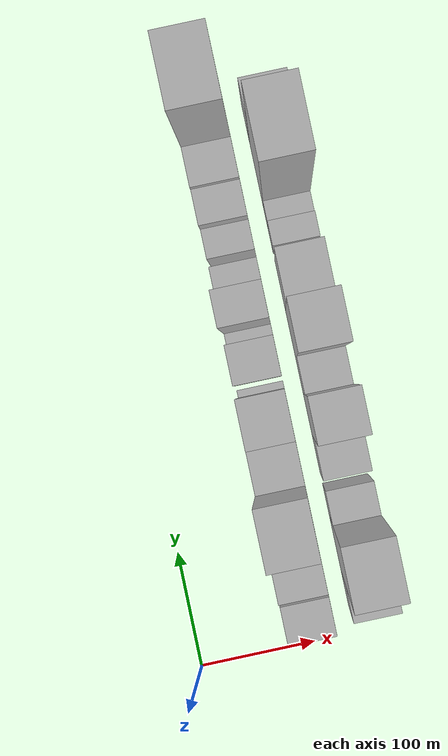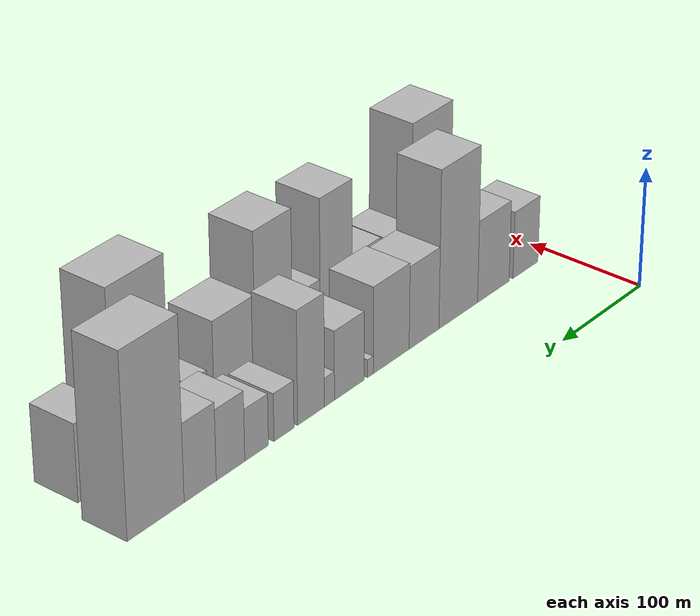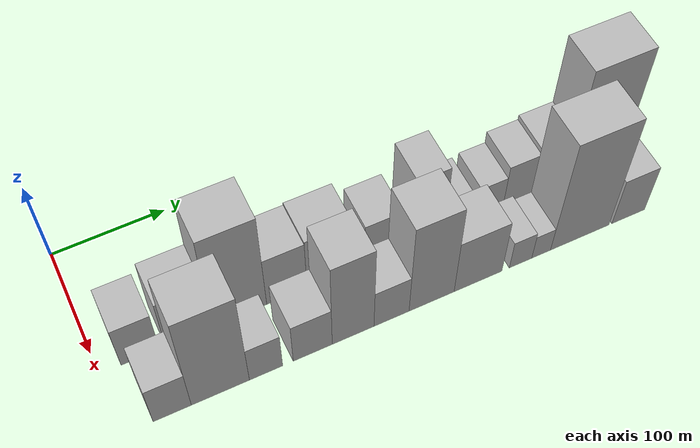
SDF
<sdf version="1.6">
 <world name="default">
  <model name="building_13">
   <static>1</static>
   <pose>100.0000 34.6609 0 0.000000 0.000000 0.000000</pose>
   <link name="link">
    <pose>0 0 28.50 0 0 0</pose>
    <collision name="collision"><geometry><box><size>40.0000 32.1845 57.0000</size></box></geometry></collision>
    <visual name="visual">
     <cast_shadows>0</cast_shadows>
     <geometry><box><size>40.0000 32.1845 57.0000</size></box></geometry>
     <material>
      <script>
       <uri>model://HANNAS_wall/materials/scripts</uri>
       <uri>model://HANNAS_wall/materials/textures</uri>
       <name>vrc/HANNAS_wall</name>
      </script>
     </material>
    </visual>
   </link>
  </model>
  <model name="building_14">
   <static>1</static>
   <pose>100.0000 75.6124 0 0.000000 0.000000 0.000000</pose>
   <link name="link">
    <pose>0 0 34.50 0 0 0</pose>
    <collision name="collision"><geometry><box><size>40.0000 39.7187 69.0000</size></box></geometry></collision>
    <visual name="visual">
     <cast_shadows>0</cast_shadows>
     <geometry><box><size>40.0000 39.7187 69.0000</size></box></geometry>
     <material>
      <script>
       <uri>model://HANNAS_wall/materials/scripts</uri>
       <uri>model://HANNAS_wall/materials/textures</uri>
       <name>vrc/HANNAS_wall</name>
      </script>
     </material>
    </visual>
   </link>
  </model>
  <model name="building_15">
   <static>1</static>
   <pose>100.0000 119.1452 0 0.000000 0.000000 0.000000</pose>
   <link name="link">
    <pose>0 0 66.00 0 0 0</pose>
    <collision name="collision"><geometry><box><size>40.0000 47.3469 132.0000</size></box></geometry></collision>
    <visual name="visual">
     <cast_shadows>0</cast_shadows>
     <geometry><box><size>40.0000 47.3469 132.0000</size></box></geometry>
     <material>
      <script>
       <uri>model://HANNAS_wall/materials/scripts</uri>
       <uri>model://HANNAS_wall/materials/textures</uri>
       <name>vrc/HANNAS_wall</name>
      </script>
     </material>
    </visual>
   </link>
  </model>
  <model name="building_16">
   <static>1</static>
   <pose>100.0000 160.6258 0 0.000000 0.000000 0.000000</pose>
   <link name="link">
    <pose>0 0 34.50 0 0 0</pose>
    <collision name="collision"><geometry><box><size>40.0000 35.6143 69.0000</size></box></geometry></collision>
    <visual name="visual">
     <cast_shadows>0</cast_shadows>
     <geometry><box><size>40.0000 35.6143 69.0000</size></box></geometry>
     <material>
      <script>
       <uri>model://HANNAS_wall/materials/scripts</uri>
       <uri>model://HANNAS_wall/materials/textures</uri>
       <name>vrc/HANNAS_wall</name>
      </script>
     </material>
    </visual>
   </link>
  </model>
  <model name="building_17">
   <static>1</static>
   <pose>100.0000 199.3810 0 0.000000 0.000000 0.000000</pose>
   <link name="link">
    <pose>0 0 36.00 0 0 0</pose>
    <collision name="collision"><geometry><box><size>40.0000 41.8960 72.0000</size></box></geometry></collision>
    <visual name="visual">
     <cast_shadows>0</cast_shadows>
     <geometry><box><size>40.0000 41.8960 72.0000</size></box></geometry>
     <material>
      <script>
       <uri>model://HANNAS_wall/materials/scripts</uri>
       <uri>model://HANNAS_wall/materials/textures</uri>
       <name>vrc/HANNAS_wall</name>
      </script>
     </material>
    </visual>
   </link>
  </model>
  <model name="building_18">
   <static>1</static>
   <pose>100.0000 223.5403 0 0.000000 0.000000 0.000000</pose>
   <link name="link">
    <pose>0 0 7.50 0 0 0</pose>
    <collision name="collision"><geometry><box><size>40.0000 6.4225 15.0000</size></box></geometry></collision>
    <visual name="visual">
     <cast_shadows>0</cast_shadows>
     <geometry><box><size>40.0000 6.4225 15.0000</size></box></geometry>
     <material>
      <script>
       <uri>model://HANNAS_wall/materials/scripts</uri>
       <uri>model://HANNAS_wall/materials/textures</uri>
       <name>vrc/HANNAS_wall</name>
      </script>
     </material>
    </visual>
   </link>
  </model>
  <model name="building_19">
   <static>1</static>
   <pose>100.0000 247.5227 0 0.000000 0.000000 0.000000</pose>
   <link name="link">
    <pose>0 0 28.50 0 0 0</pose>
    <collision name="collision"><geometry><box><size>40.0000 33.5424 57.0000</size></box></geometry></collision>
    <visual name="visual">
     <cast_shadows>0</cast_shadows>
     <geometry><box><size>40.0000 33.5424 57.0000</size></box></geometry>
     <material>
      <script>
       <uri>model://HANNAS_wall/materials/scripts</uri>
       <uri>model://HANNAS_wall/materials/textures</uri>
       <name>vrc/HANNAS_wall</name>
      </script>
     </material>
    </visual>
   </link>
  </model>
  <model name="building_20">
   <static>1</static>
   <pose>100.0000 269.8458 0 0.000000 0.000000 0.000000</pose>
   <link name="link">
    <pose>0 0 12.00 0 0 0</pose>
    <collision name="collision"><geometry><box><size>40.0000 11.1038 24.0000</size></box></geometry></collision>
    <visual name="visual">
     <cast_shadows>0</cast_shadows>
     <geometry><box><size>40.0000 11.1038 24.0000</size></box></geometry>
     <material>
      <script>
       <uri>model://HANNAS_wall/materials/scripts</uri>
       <uri>model://HANNAS_wall/materials/textures</uri>
       <name>vrc/HANNAS_wall</name>
      </script>
     </material>
    </visual>
   </link>
  </model>
  <model name="building_21">
   <static>1</static>
   <pose>100.0000 290.1641 0 0.000000 0.000000 0.000000</pose>
   <link name="link">
    <pose>0 0 46.50 0 0 0</pose>
    <collision name="collision"><geometry><box><size>40.0000 29.5327 93.0000</size></box></geometry></collision>
    <visual name="visual">
     <cast_shadows>0</cast_shadows>
     <geometry><box><size>40.0000 29.5327 93.0000</size></box></geometry>
     <material>
      <script>
       <uri>model://HANNAS_wall/materials/scripts</uri>
       <uri>model://HANNAS_wall/materials/textures</uri>
       <name>vrc/HANNAS_wall</name>
      </script>
     </material>
    </visual>
   </link>
  </model>
  <model name="building_22">
   <static>1</static>
   <pose>100.0000 319.6768 0 0.000000 0.000000 0.000000</pose>
   <link name="link">
    <pose>0 0 19.50 0 0 0</pose>
    <collision name="collision"><geometry><box><size>40.0000 21.4927 39.0000</size></box></geometry></collision>
    <visual name="visual">
     <cast_shadows>0</cast_shadows>
     <geometry><box><size>40.0000 21.4927 39.0000</size></box></geometry>
     <material>
      <script>
       <uri>model://HANNAS_wall/materials/scripts</uri>
       <uri>model://HANNAS_wall/materials/textures</uri>
       <name>vrc/HANNAS_wall</name>
      </script>
     </material>
    </visual>
   </link>
  </model>
  <model name="building_23">
   <static>1</static>
   <pose>100.0000 348.9001 0 0.000000 0.000000 0.000000</pose>
   <link name="link">
    <pose>0 0 21.00 0 0 0</pose>
    <collision name="collision"><geometry><box><size>40.0000 24.9539 42.0000</size></box></geometry></collision>
    <visual name="visual">
     <cast_shadows>0</cast_shadows>
     <geometry><box><size>40.0000 24.9539 42.0000</size></box></geometry>
     <material>
      <script>
       <uri>model://HANNAS_wall/materials/scripts</uri>
       <uri>model://HANNAS_wall/materials/textures</uri>
       <name>vrc/HANNAS_wall</name>
      </script>
     </material>
    </visual>
   </link>
  </model>
  <model name="building_24">
   <static>1</static>
   <pose>100.0000 376.1782 0 0.000000 0.000000 0.000000</pose>
   <link name="link">
    <pose>0 0 28.50 0 0 0</pose>
    <collision name="collision"><geometry><box><size>40.0000 29.6024 57.0000</size></box></geometry></collision>
    <visual name="visual">
     <cast_shadows>0</cast_shadows>
     <geometry><box><size>40.0000 29.6024 57.0000</size></box></geometry>
     <material>
      <script>
       <uri>model://HANNAS_wall/materials/scripts</uri>
       <uri>model://HANNAS_wall/materials/textures</uri>
       <name>vrc/HANNAS_wall</name>
      </script>
     </material>
    </visual>
   </link>
  </model>
  <model name="building_25">
   <static>1</static>
   <pose>100.0000 407.3215 0 0.000000 0.000000 0.000000</pose>
   <link name="link">
    <pose>0 0 31.50 0 0 0</pose>
    <collision name="collision"><geometry><box><size>40.0000 32.6842 63.0000</size></box></geometry></collision>
    <visual name="visual">
     <cast_shadows>0</cast_shadows>
     <geometry><box><size>40.0000 32.6842 63.0000</size></box></geometry>
     <material>
      <script>
       <uri>model://HANNAS_wall/materials/scripts</uri>
       <uri>model://HANNAS_wall/materials/textures</uri>
       <name>vrc/HANNAS_wall</name>
      </script>
     </material>
    </visual>
   </link>
  </model>
  <model name="building_26">
   <static>1</static>
   <pose>100.0000 451.8058 0 0.000000 0.000000 0.000000</pose>
   <link name="link">
    <pose>0 0 73.50 0 0 0</pose>
    <collision name="collision"><geometry><box><size>40.0000 56.2844 147.0000</size></box></geometry></collision>
    <visual name="visual">
     <cast_shadows>0</cast_shadows>
     <geometry><box><size>40.0000 56.2844 147.0000</size></box></geometry>
     <material>
      <script>
       <uri>model://HANNAS_wall/materials/scripts</uri>
       <uri>model://HANNAS_wall/materials/textures</uri>
       <name>vrc/HANNAS_wall</name>
      </script>
     </material>
    </visual>
   </link>
  </model>
  <model name="building_38">
   <static>1</static>
   <pose>155.0000 40.3912 0 0.000000 0.000000 0.000000</pose>
   <link name="link">
    <pose>0 0 27.00 0 0 0</pose>
    <collision name="collision"><geometry><box><size>40.0000 31.2895 54.0000</size></box></geometry></collision>
    <visual name="visual">
     <cast_shadows>0</cast_shadows>
     <geometry><box><size>40.0000 31.2895 54.0000</size></box></geometry>
     <material>
      <script>
       <uri>model://HANNAS_wall/materials/scripts</uri>
       <uri>model://HANNAS_wall/materials/textures</uri>
       <name>vrc/HANNAS_wall</name>
      </script>
     </material>
    </visual>
   </link>
  </model>
  <model name="building_39">
   <static>1</static>
   <pose>155.0000 80.2351 0 0.000000 0.000000 0.000000</pose>
   <link name="link">
    <pose>0 0 67.50 0 0 0</pose>
    <collision name="collision"><geometry><box><size>40.0000 48.3982 135.0000</size></box></geometry></collision>
    <visual name="visual">
     <cast_shadows>0</cast_shadows>
     <geometry><box><size>40.0000 48.3982 135.0000</size></box></geometry>
     <material>
      <script>
       <uri>model://HANNAS_wall/materials/scripts</uri>
       <uri>model://HANNAS_wall/materials/textures</uri>
       <name>vrc/HANNAS_wall</name>
      </script>
     </material>
    </visual>
   </link>
  </model>
  <model name="building_40">
   <static>1</static>
   <pose>155.0000 118.5507 0 0.000000 0.000000 0.000000</pose>
   <link name="link">
    <pose>0 0 25.50 0 0 0</pose>
    <collision name="collision"><geometry><box><size>40.0000 28.2330 51.0000</size></box></geometry></collision>
    <visual name="visual">
     <cast_shadows>0</cast_shadows>
     <geometry><box><size>40.0000 28.2330 51.0000</size></box></geometry>
     <material>
      <script>
       <uri>model://HANNAS_wall/materials/scripts</uri>
       <uri>model://HANNAS_wall/materials/textures</uri>
       <name>vrc/HANNAS_wall</name>
      </script>
     </material>
    </visual>
   </link>
  </model>
  <model name="building_41">
   <static>1</static>
   <pose>155.0000 158.5747 0 0.000000 0.000000 0.000000</pose>
   <link name="link">
    <pose>0 0 28.50 0 0 0</pose>
    <collision name="collision"><geometry><box><size>40.0000 33.8149 57.0000</size></box></geometry></collision>
    <visual name="visual">
     <cast_shadows>0</cast_shadows>
     <geometry><box><size>40.0000 33.8149 57.0000</size></box></geometry>
     <material>
      <script>
       <uri>model://HANNAS_wall/materials/scripts</uri>
       <uri>model://HANNAS_wall/materials/textures</uri>
       <name>vrc/HANNAS_wall</name>
      </script>
     </material>
    </visual>
   </link>
  </model>
  <model name="building_42">
   <static>1</static>
   <pose>155.0000 193.8542 0 0.000000 0.000000 0.000000</pose>
   <link name="link">
    <pose>0 0 60.00 0 0 0</pose>
    <collision name="collision"><geometry><box><size>40.0000 36.7441 120.0000</size></box></geometry></collision>
    <visual name="visual">
     <cast_shadows>0</cast_shadows>
     <geometry><box><size>40.0000 36.7441 120.0000</size></box></geometry>
     <material>
      <script>
       <uri>model://HANNAS_wall/materials/scripts</uri>
       <uri>model://HANNAS_wall/materials/textures</uri>
       <name>vrc/HANNAS_wall</name>
      </script>
     </material>
    </visual>
   </link>
  </model>
  <model name="building_43">
   <static>1</static>
   <pose>155.0000 227.9338 0 0.000000 0.000000 0.000000</pose>
   <link name="link">
    <pose>0 0 27.00 0 0 0</pose>
    <collision name="collision"><geometry><box><size>40.0000 31.4151 54.0000</size></box></geometry></collision>
    <visual name="visual">
     <cast_shadows>0</cast_shadows>
     <geometry><box><size>40.0000 31.4151 54.0000</size></box></geometry>
     <material>
      <script>
       <uri>model://HANNAS_wall/materials/scripts</uri>
       <uri>model://HANNAS_wall/materials/textures</uri>
       <name>vrc/HANNAS_wall</name>
      </script>
     </material>
    </visual>
   </link>
  </model>
  <model name="building_44">
   <static>1</static>
   <pose>155.0000 264.1843 0 0.000000 0.000000 0.000000</pose>
   <link name="link">
    <pose>0 0 63.00 0 0 0</pose>
    <collision name="collision"><geometry><box><size>40.0000 41.0857 126.0000</size></box></geometry></collision>
    <visual name="visual">
     <cast_shadows>0</cast_shadows>
     <geometry><box><size>40.0000 41.0857 126.0000</size></box></geometry>
     <material>
      <script>
       <uri>model://HANNAS_wall/materials/scripts</uri>
       <uri>model://HANNAS_wall/materials/textures</uri>
       <name>vrc/HANNAS_wall</name>
      </script>
     </material>
    </visual>
   </link>
  </model>
  <model name="building_45">
   <static>1</static>
   <pose>155.0000 306.9804 0 0.000000 0.000000 0.000000</pose>
   <link name="link">
    <pose>0 0 37.50 0 0 0</pose>
    <collision name="collision"><geometry><box><size>40.0000 44.5066 75.0000</size></box></geometry></collision>
    <visual name="visual">
     <cast_shadows>0</cast_shadows>
     <geometry><box><size>40.0000 44.5066 75.0000</size></box></geometry>
     <material>
      <script>
       <uri>model://HANNAS_wall/materials/scripts</uri>
       <uri>model://HANNAS_wall/materials/textures</uri>
       <name>vrc/HANNAS_wall</name>
      </script>
     </material>
    </visual>
   </link>
  </model>
  <model name="building_46">
   <static>1</static>
   <pose>155.0000 346.8409 0 0.000000 0.000000 0.000000</pose>
   <link name="link">
    <pose>0 0 19.50 0 0 0</pose>
    <collision name="collision"><geometry><box><size>40.0000 21.2144 39.0000</size></box></geometry></collision>
    <visual name="visual">
     <cast_shadows>0</cast_shadows>
     <geometry><box><size>40.0000 21.2144 39.0000</size></box></geometry>
     <material>
      <script>
       <uri>model://HANNAS_wall/materials/scripts</uri>
       <uri>model://HANNAS_wall/materials/textures</uri>
       <name>vrc/HANNAS_wall</name>
      </script>
     </material>
    </visual>
   </link>
  </model>
  <model name="building_47">
   <static>1</static>
   <pose>155.0000 366.4361 0 0.000000 0.000000 0.000000</pose>
   <link name="link">
    <pose>0 0 16.50 0 0 0</pose>
    <collision name="collision"><geometry><box><size>40.0000 17.9760 33.0000</size></box></geometry></collision>
    <visual name="visual">
     <cast_shadows>0</cast_shadows>
     <geometry><box><size>40.0000 17.9760 33.0000</size></box></geometry>
     <material>
      <script>
       <uri>model://HANNAS_wall/materials/scripts</uri>
       <uri>model://HANNAS_wall/materials/textures</uri>
       <name>vrc/HANNAS_wall</name>
      </script>
     </material>
    </visual>
   </link>
  </model>
  <model name="building_48">
   <static>1</static>
   <pose>155.0000 403.8598 0 0.000000 0.000000 0.000000</pose>
   <link name="link">
    <pose>0 0 75.00 0 0 0</pose>
    <collision name="collision"><geometry><box><size>40.0000 56.8712 150.0000</size></box></geometry></collision>
    <visual name="visual">
     <cast_shadows>0</cast_shadows>
     <geometry><box><size>40.0000 56.8712 150.0000</size></box></geometry>
     <material>
      <script>
       <uri>model://HANNAS_wall/materials/scripts</uri>
       <uri>model://HANNAS_wall/materials/textures</uri>
       <name>vrc/HANNAS_wall</name>
      </script>
     </material>
    </visual>
   </link>
  </model>
  <model name="building_49">
   <static>1</static>
   <pose>155.0000 451.5473 0 0.000000 0.000000 0.000000</pose>
   <link name="link">
    <pose>0 0 31.50 0 0 0</pose>
    <collision name="collision"><geometry><box><size>40.0000 32.5039 63.0000</size></box></geometry></collision>
    <visual name="visual">
     <cast_shadows>0</cast_shadows>
     <geometry><box><size>40.0000 32.5039 63.0000</size></box></geometry>
     <material>
      <script>
       <uri>model://HANNAS_wall/materials/scripts</uri>
       <uri>model://HANNAS_wall/materials/textures</uri>
       <name>vrc/HANNAS_wall</name>
      </script>
     </material>
    </visual>
   </link>
  </model>
 </world>
</sdf>
